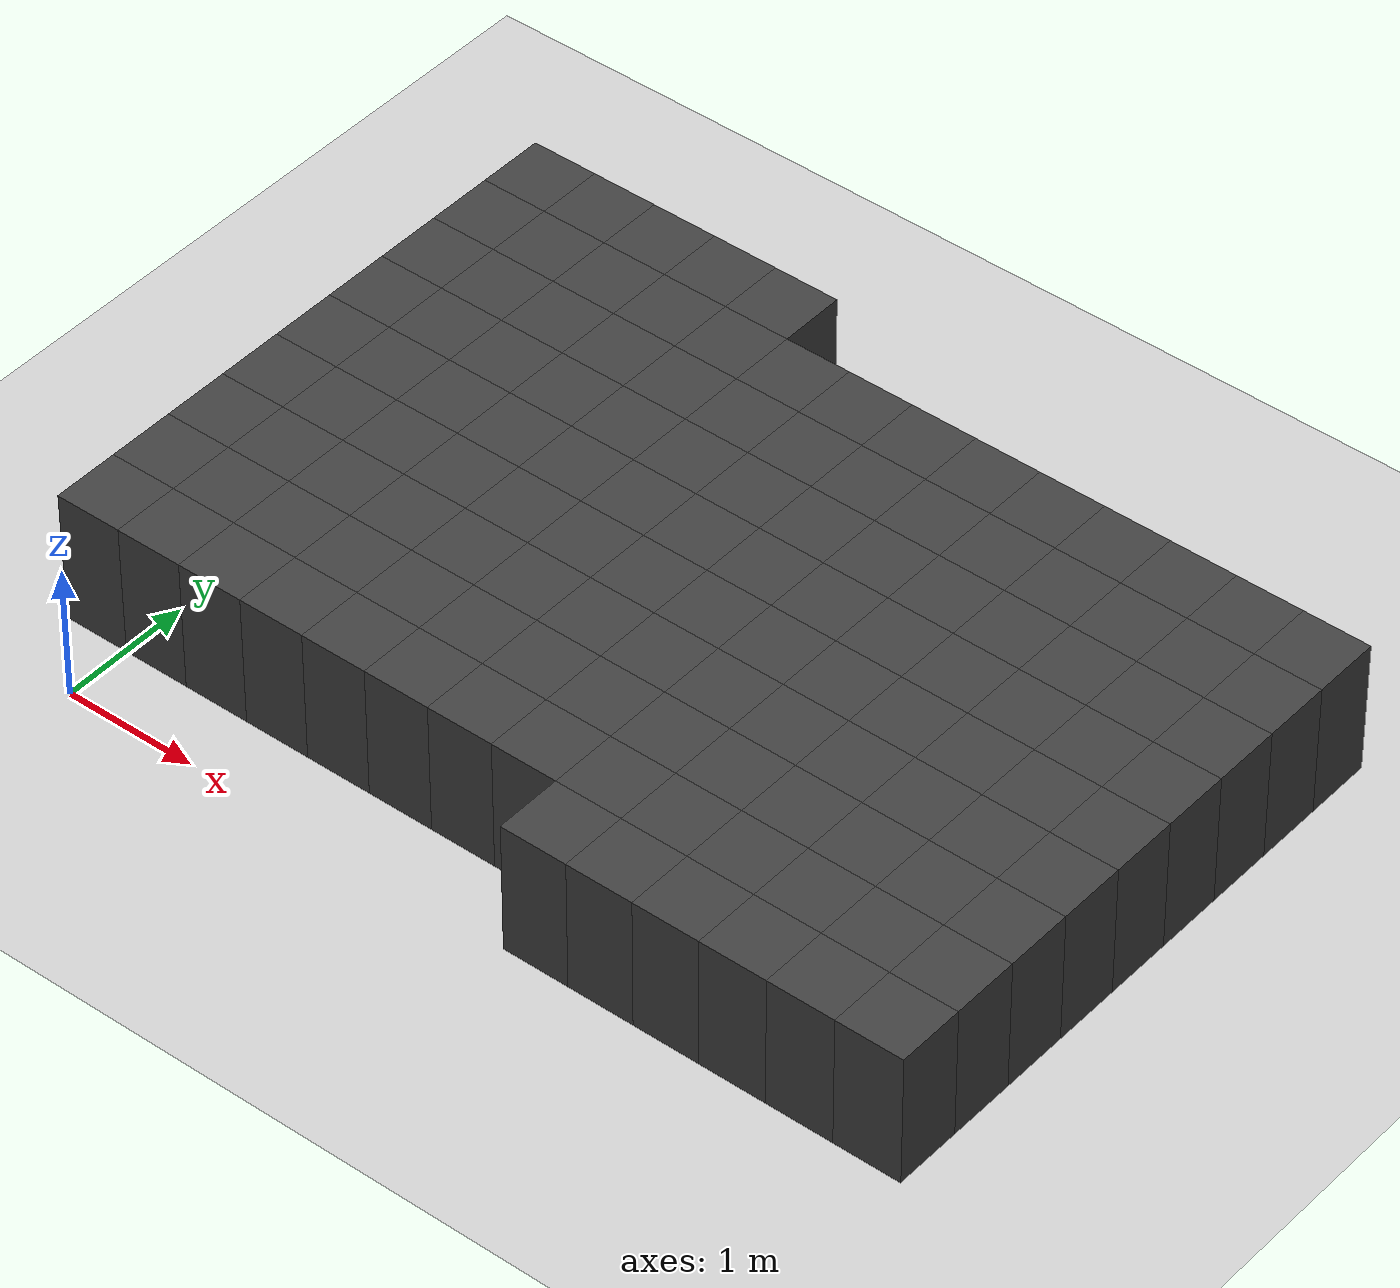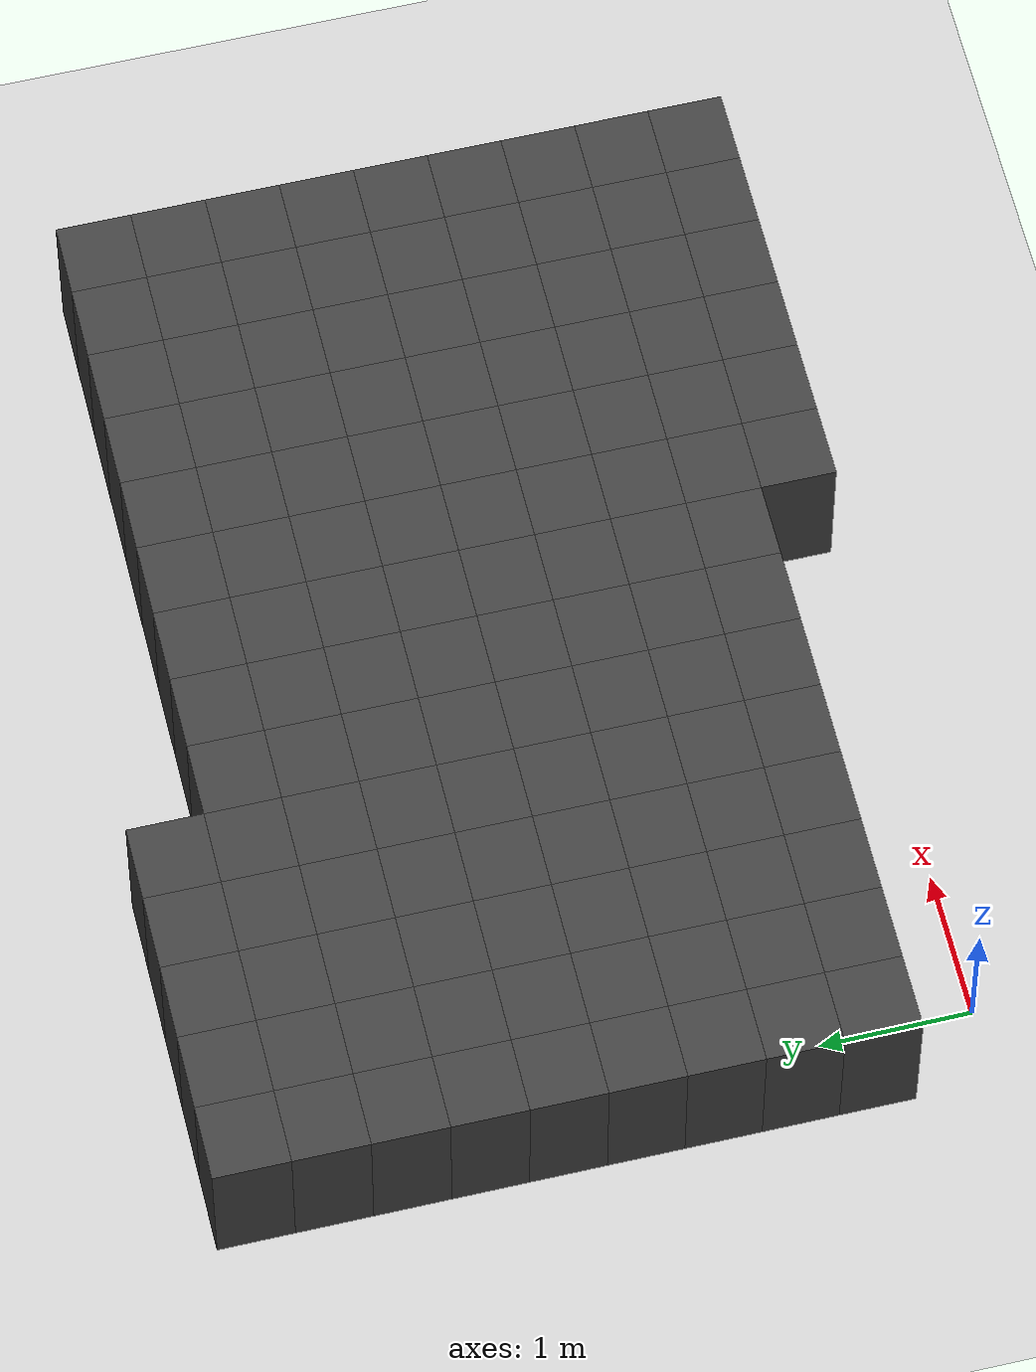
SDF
<sdf version="1.7">
 <world name="map_14547">
  <model name="ground_plane">
   <static>true</static>
   <link name="link">
    <collision name="collision">
     <geometry><plane><normal>0 0 1</normal><size>200 200</size></plane></geometry>
    </collision>
    <visual name="visual">
     <geometry><plane><normal>0 0 1</normal><size>200 200</size></plane></geometry>
     <material><ambient>0.8 0.8 0.8 1</ambient><diffuse>0.8 0.8 0.8 1</diffuse></material>
    </visual>
   </link>
  </model>
  <model name="maze_environment">
   <static>true</static>
   <link name="wall_462">
    <pose>-0.250 4.750 0.500 0 0 0</pose>
    <collision name="col"><geometry><box><size>0.5 0.5 1.0</size></box></geometry></collision>
    <visual name="vis">
     <geometry><box><size>0.5 0.5 1.0</size></box></geometry>
     <material><ambient>0.15 0.15 0.15 1</ambient><diffuse>0.25 0.25 0.25 1</diffuse></material>
    </visual>
   </link>
   <link name="wall_463">
    <pose>0.250 4.750 0.500 0 0 0</pose>
    <collision name="col"><geometry><box><size>0.5 0.5 1.0</size></box></geometry></collision>
    <visual name="vis">
     <geometry><box><size>0.5 0.5 1.0</size></box></geometry>
     <material><ambient>0.15 0.15 0.15 1</ambient><diffuse>0.25 0.25 0.25 1</diffuse></material>
    </visual>
   </link>
   <link name="wall_464">
    <pose>0.750 4.750 0.500 0 0 0</pose>
    <collision name="col"><geometry><box><size>0.5 0.5 1.0</size></box></geometry></collision>
    <visual name="vis">
     <geometry><box><size>0.5 0.5 1.0</size></box></geometry>
     <material><ambient>0.15 0.15 0.15 1</ambient><diffuse>0.25 0.25 0.25 1</diffuse></material>
    </visual>
   </link>
   <link name="wall_465">
    <pose>1.250 4.750 0.500 0 0 0</pose>
    <collision name="col"><geometry><box><size>0.5 0.5 1.0</size></box></geometry></collision>
    <visual name="vis">
     <geometry><box><size>0.5 0.5 1.0</size></box></geometry>
     <material><ambient>0.15 0.15 0.15 1</ambient><diffuse>0.25 0.25 0.25 1</diffuse></material>
    </visual>
   </link>
   <link name="wall_466">
    <pose>1.750 4.750 0.500 0 0 0</pose>
    <collision name="col"><geometry><box><size>0.5 0.5 1.0</size></box></geometry></collision>
    <visual name="vis">
     <geometry><box><size>0.5 0.5 1.0</size></box></geometry>
     <material><ambient>0.15 0.15 0.15 1</ambient><diffuse>0.25 0.25 0.25 1</diffuse></material>
    </visual>
   </link>
   <link name="wall_504">
    <pose>-0.250 4.250 0.500 0 0 0</pose>
    <collision name="col"><geometry><box><size>0.5 0.5 1.0</size></box></geometry></collision>
    <visual name="vis">
     <geometry><box><size>0.5 0.5 1.0</size></box></geometry>
     <material><ambient>0.15 0.15 0.15 1</ambient><diffuse>0.25 0.25 0.25 1</diffuse></material>
    </visual>
   </link>
   <link name="wall_505">
    <pose>0.250 4.250 0.500 0 0 0</pose>
    <collision name="col"><geometry><box><size>0.5 0.5 1.0</size></box></geometry></collision>
    <visual name="vis">
     <geometry><box><size>0.5 0.5 1.0</size></box></geometry>
     <material><ambient>0.15 0.15 0.15 1</ambient><diffuse>0.25 0.25 0.25 1</diffuse></material>
    </visual>
   </link>
   <link name="wall_506">
    <pose>0.750 4.250 0.500 0 0 0</pose>
    <collision name="col"><geometry><box><size>0.5 0.5 1.0</size></box></geometry></collision>
    <visual name="vis">
     <geometry><box><size>0.5 0.5 1.0</size></box></geometry>
     <material><ambient>0.15 0.15 0.15 1</ambient><diffuse>0.25 0.25 0.25 1</diffuse></material>
    </visual>
   </link>
   <link name="wall_507">
    <pose>1.250 4.250 0.500 0 0 0</pose>
    <collision name="col"><geometry><box><size>0.5 0.5 1.0</size></box></geometry></collision>
    <visual name="vis">
     <geometry><box><size>0.5 0.5 1.0</size></box></geometry>
     <material><ambient>0.15 0.15 0.15 1</ambient><diffuse>0.25 0.25 0.25 1</diffuse></material>
    </visual>
   </link>
   <link name="wall_508">
    <pose>1.750 4.250 0.500 0 0 0</pose>
    <collision name="col"><geometry><box><size>0.5 0.5 1.0</size></box></geometry></collision>
    <visual name="vis">
     <geometry><box><size>0.5 0.5 1.0</size></box></geometry>
     <material><ambient>0.15 0.15 0.15 1</ambient><diffuse>0.25 0.25 0.25 1</diffuse></material>
    </visual>
   </link>
   <link name="wall_509">
    <pose>2.250 4.250 0.500 0 0 0</pose>
    <collision name="col"><geometry><box><size>0.5 0.5 1.0</size></box></geometry></collision>
    <visual name="vis">
     <geometry><box><size>0.5 0.5 1.0</size></box></geometry>
     <material><ambient>0.15 0.15 0.15 1</ambient><diffuse>0.25 0.25 0.25 1</diffuse></material>
    </visual>
   </link>
   <link name="wall_510">
    <pose>2.750 4.250 0.500 0 0 0</pose>
    <collision name="col"><geometry><box><size>0.5 0.5 1.0</size></box></geometry></collision>
    <visual name="vis">
     <geometry><box><size>0.5 0.5 1.0</size></box></geometry>
     <material><ambient>0.15 0.15 0.15 1</ambient><diffuse>0.25 0.25 0.25 1</diffuse></material>
    </visual>
   </link>
   <link name="wall_511">
    <pose>3.250 4.250 0.500 0 0 0</pose>
    <collision name="col"><geometry><box><size>0.5 0.5 1.0</size></box></geometry></collision>
    <visual name="vis">
     <geometry><box><size>0.5 0.5 1.0</size></box></geometry>
     <material><ambient>0.15 0.15 0.15 1</ambient><diffuse>0.25 0.25 0.25 1</diffuse></material>
    </visual>
   </link>
   <link name="wall_512">
    <pose>3.750 4.250 0.500 0 0 0</pose>
    <collision name="col"><geometry><box><size>0.5 0.5 1.0</size></box></geometry></collision>
    <visual name="vis">
     <geometry><box><size>0.5 0.5 1.0</size></box></geometry>
     <material><ambient>0.15 0.15 0.15 1</ambient><diffuse>0.25 0.25 0.25 1</diffuse></material>
    </visual>
   </link>
   <link name="wall_513">
    <pose>4.250 4.250 0.500 0 0 0</pose>
    <collision name="col"><geometry><box><size>0.5 0.5 1.0</size></box></geometry></collision>
    <visual name="vis">
     <geometry><box><size>0.5 0.5 1.0</size></box></geometry>
     <material><ambient>0.15 0.15 0.15 1</ambient><diffuse>0.25 0.25 0.25 1</diffuse></material>
    </visual>
   </link>
   <link name="wall_514">
    <pose>4.750 4.250 0.500 0 0 0</pose>
    <collision name="col"><geometry><box><size>0.5 0.5 1.0</size></box></geometry></collision>
    <visual name="vis">
     <geometry><box><size>0.5 0.5 1.0</size></box></geometry>
     <material><ambient>0.15 0.15 0.15 1</ambient><diffuse>0.25 0.25 0.25 1</diffuse></material>
    </visual>
   </link>
   <link name="wall_515">
    <pose>5.250 4.250 0.500 0 0 0</pose>
    <collision name="col"><geometry><box><size>0.5 0.5 1.0</size></box></geometry></collision>
    <visual name="vis">
     <geometry><box><size>0.5 0.5 1.0</size></box></geometry>
     <material><ambient>0.15 0.15 0.15 1</ambient><diffuse>0.25 0.25 0.25 1</diffuse></material>
    </visual>
   </link>
   <link name="wall_516">
    <pose>5.750 4.250 0.500 0 0 0</pose>
    <collision name="col"><geometry><box><size>0.5 0.5 1.0</size></box></geometry></collision>
    <visual name="vis">
     <geometry><box><size>0.5 0.5 1.0</size></box></geometry>
     <material><ambient>0.15 0.15 0.15 1</ambient><diffuse>0.25 0.25 0.25 1</diffuse></material>
    </visual>
   </link>
   <link name="wall_517">
    <pose>6.250 4.250 0.500 0 0 0</pose>
    <collision name="col"><geometry><box><size>0.5 0.5 1.0</size></box></geometry></collision>
    <visual name="vis">
     <geometry><box><size>0.5 0.5 1.0</size></box></geometry>
     <material><ambient>0.15 0.15 0.15 1</ambient><diffuse>0.25 0.25 0.25 1</diffuse></material>
    </visual>
   </link>
   <link name="wall_546">
    <pose>-0.250 3.750 0.500 0 0 0</pose>
    <collision name="col"><geometry><box><size>0.5 0.5 1.0</size></box></geometry></collision>
    <visual name="vis">
     <geometry><box><size>0.5 0.5 1.0</size></box></geometry>
     <material><ambient>0.15 0.15 0.15 1</ambient><diffuse>0.25 0.25 0.25 1</diffuse></material>
    </visual>
   </link>
   <link name="wall_547">
    <pose>0.250 3.750 0.500 0 0 0</pose>
    <collision name="col"><geometry><box><size>0.5 0.5 1.0</size></box></geometry></collision>
    <visual name="vis">
     <geometry><box><size>0.5 0.5 1.0</size></box></geometry>
     <material><ambient>0.15 0.15 0.15 1</ambient><diffuse>0.25 0.25 0.25 1</diffuse></material>
    </visual>
   </link>
   <link name="wall_548">
    <pose>0.750 3.750 0.500 0 0 0</pose>
    <collision name="col"><geometry><box><size>0.5 0.5 1.0</size></box></geometry></collision>
    <visual name="vis">
     <geometry><box><size>0.5 0.5 1.0</size></box></geometry>
     <material><ambient>0.15 0.15 0.15 1</ambient><diffuse>0.25 0.25 0.25 1</diffuse></material>
    </visual>
   </link>
   <link name="wall_549">
    <pose>1.250 3.750 0.500 0 0 0</pose>
    <collision name="col"><geometry><box><size>0.5 0.5 1.0</size></box></geometry></collision>
    <visual name="vis">
     <geometry><box><size>0.5 0.5 1.0</size></box></geometry>
     <material><ambient>0.15 0.15 0.15 1</ambient><diffuse>0.25 0.25 0.25 1</diffuse></material>
    </visual>
   </link>
   <link name="wall_550">
    <pose>1.750 3.750 0.500 0 0 0</pose>
    <collision name="col"><geometry><box><size>0.5 0.5 1.0</size></box></geometry></collision>
    <visual name="vis">
     <geometry><box><size>0.5 0.5 1.0</size></box></geometry>
     <material><ambient>0.15 0.15 0.15 1</ambient><diffuse>0.25 0.25 0.25 1</diffuse></material>
    </visual>
   </link>
   <link name="wall_551">
    <pose>2.250 3.750 0.500 0 0 0</pose>
    <collision name="col"><geometry><box><size>0.5 0.5 1.0</size></box></geometry></collision>
    <visual name="vis">
     <geometry><box><size>0.5 0.5 1.0</size></box></geometry>
     <material><ambient>0.15 0.15 0.15 1</ambient><diffuse>0.25 0.25 0.25 1</diffuse></material>
    </visual>
   </link>
   <link name="wall_552">
    <pose>2.750 3.750 0.500 0 0 0</pose>
    <collision name="col"><geometry><box><size>0.5 0.5 1.0</size></box></geometry></collision>
    <visual name="vis">
     <geometry><box><size>0.5 0.5 1.0</size></box></geometry>
     <material><ambient>0.15 0.15 0.15 1</ambient><diffuse>0.25 0.25 0.25 1</diffuse></material>
    </visual>
   </link>
   <link name="wall_553">
    <pose>3.250 3.750 0.500 0 0 0</pose>
    <collision name="col"><geometry><box><size>0.5 0.5 1.0</size></box></geometry></collision>
    <visual name="vis">
     <geometry><box><size>0.5 0.5 1.0</size></box></geometry>
     <material><ambient>0.15 0.15 0.15 1</ambient><diffuse>0.25 0.25 0.25 1</diffuse></material>
    </visual>
   </link>
   <link name="wall_554">
    <pose>3.750 3.750 0.500 0 0 0</pose>
    <collision name="col"><geometry><box><size>0.5 0.5 1.0</size></box></geometry></collision>
    <visual name="vis">
     <geometry><box><size>0.5 0.5 1.0</size></box></geometry>
     <material><ambient>0.15 0.15 0.15 1</ambient><diffuse>0.25 0.25 0.25 1</diffuse></material>
    </visual>
   </link>
   <link name="wall_555">
    <pose>4.250 3.750 0.500 0 0 0</pose>
    <collision name="col"><geometry><box><size>0.5 0.5 1.0</size></box></geometry></collision>
    <visual name="vis">
     <geometry><box><size>0.5 0.5 1.0</size></box></geometry>
     <material><ambient>0.15 0.15 0.15 1</ambient><diffuse>0.25 0.25 0.25 1</diffuse></material>
    </visual>
   </link>
   <link name="wall_556">
    <pose>4.750 3.750 0.500 0 0 0</pose>
    <collision name="col"><geometry><box><size>0.5 0.5 1.0</size></box></geometry></collision>
    <visual name="vis">
     <geometry><box><size>0.5 0.5 1.0</size></box></geometry>
     <material><ambient>0.15 0.15 0.15 1</ambient><diffuse>0.25 0.25 0.25 1</diffuse></material>
    </visual>
   </link>
   <link name="wall_557">
    <pose>5.250 3.750 0.500 0 0 0</pose>
    <collision name="col"><geometry><box><size>0.5 0.5 1.0</size></box></geometry></collision>
    <visual name="vis">
     <geometry><box><size>0.5 0.5 1.0</size></box></geometry>
     <material><ambient>0.15 0.15 0.15 1</ambient><diffuse>0.25 0.25 0.25 1</diffuse></material>
    </visual>
   </link>
   <link name="wall_558">
    <pose>5.750 3.750 0.500 0 0 0</pose>
    <collision name="col"><geometry><box><size>0.5 0.5 1.0</size></box></geometry></collision>
    <visual name="vis">
     <geometry><box><size>0.5 0.5 1.0</size></box></geometry>
     <material><ambient>0.15 0.15 0.15 1</ambient><diffuse>0.25 0.25 0.25 1</diffuse></material>
    </visual>
   </link>
   <link name="wall_559">
    <pose>6.250 3.750 0.500 0 0 0</pose>
    <collision name="col"><geometry><box><size>0.5 0.5 1.0</size></box></geometry></collision>
    <visual name="vis">
     <geometry><box><size>0.5 0.5 1.0</size></box></geometry>
     <material><ambient>0.15 0.15 0.15 1</ambient><diffuse>0.25 0.25 0.25 1</diffuse></material>
    </visual>
   </link>
   <link name="wall_595">
    <pose>-0.250 3.250 0.500 0 0 0</pose>
    <collision name="col"><geometry><box><size>0.5 0.5 1.0</size></box></geometry></collision>
    <visual name="vis">
     <geometry><box><size>0.5 0.5 1.0</size></box></geometry>
     <material><ambient>0.15 0.15 0.15 1</ambient><diffuse>0.25 0.25 0.25 1</diffuse></material>
    </visual>
   </link>
   <link name="wall_596">
    <pose>0.250 3.250 0.500 0 0 0</pose>
    <collision name="col"><geometry><box><size>0.5 0.5 1.0</size></box></geometry></collision>
    <visual name="vis">
     <geometry><box><size>0.5 0.5 1.0</size></box></geometry>
     <material><ambient>0.15 0.15 0.15 1</ambient><diffuse>0.25 0.25 0.25 1</diffuse></material>
    </visual>
   </link>
   <link name="wall_597">
    <pose>0.750 3.250 0.500 0 0 0</pose>
    <collision name="col"><geometry><box><size>0.5 0.5 1.0</size></box></geometry></collision>
    <visual name="vis">
     <geometry><box><size>0.5 0.5 1.0</size></box></geometry>
     <material><ambient>0.15 0.15 0.15 1</ambient><diffuse>0.25 0.25 0.25 1</diffuse></material>
    </visual>
   </link>
   <link name="wall_598">
    <pose>1.250 3.250 0.500 0 0 0</pose>
    <collision name="col"><geometry><box><size>0.5 0.5 1.0</size></box></geometry></collision>
    <visual name="vis">
     <geometry><box><size>0.5 0.5 1.0</size></box></geometry>
     <material><ambient>0.15 0.15 0.15 1</ambient><diffuse>0.25 0.25 0.25 1</diffuse></material>
    </visual>
   </link>
   <link name="wall_599">
    <pose>1.750 3.250 0.500 0 0 0</pose>
    <collision name="col"><geometry><box><size>0.5 0.5 1.0</size></box></geometry></collision>
    <visual name="vis">
     <geometry><box><size>0.5 0.5 1.0</size></box></geometry>
     <material><ambient>0.15 0.15 0.15 1</ambient><diffuse>0.25 0.25 0.25 1</diffuse></material>
    </visual>
   </link>
   <link name="wall_600">
    <pose>2.250 3.250 0.500 0 0 0</pose>
    <collision name="col"><geometry><box><size>0.5 0.5 1.0</size></box></geometry></collision>
    <visual name="vis">
     <geometry><box><size>0.5 0.5 1.0</size></box></geometry>
     <material><ambient>0.15 0.15 0.15 1</ambient><diffuse>0.25 0.25 0.25 1</diffuse></material>
    </visual>
   </link>
   <link name="wall_601">
    <pose>2.750 3.250 0.500 0 0 0</pose>
    <collision name="col"><geometry><box><size>0.5 0.5 1.0</size></box></geometry></collision>
    <visual name="vis">
     <geometry><box><size>0.5 0.5 1.0</size></box></geometry>
     <material><ambient>0.15 0.15 0.15 1</ambient><diffuse>0.25 0.25 0.25 1</diffuse></material>
    </visual>
   </link>
   <link name="wall_602">
    <pose>3.250 3.250 0.500 0 0 0</pose>
    <collision name="col"><geometry><box><size>0.5 0.5 1.0</size></box></geometry></collision>
    <visual name="vis">
     <geometry><box><size>0.5 0.5 1.0</size></box></geometry>
     <material><ambient>0.15 0.15 0.15 1</ambient><diffuse>0.25 0.25 0.25 1</diffuse></material>
    </visual>
   </link>
   <link name="wall_603">
    <pose>3.750 3.250 0.500 0 0 0</pose>
    <collision name="col"><geometry><box><size>0.5 0.5 1.0</size></box></geometry></collision>
    <visual name="vis">
     <geometry><box><size>0.5 0.5 1.0</size></box></geometry>
     <material><ambient>0.15 0.15 0.15 1</ambient><diffuse>0.25 0.25 0.25 1</diffuse></material>
    </visual>
   </link>
   <link name="wall_604">
    <pose>4.250 3.250 0.500 0 0 0</pose>
    <collision name="col"><geometry><box><size>0.5 0.5 1.0</size></box></geometry></collision>
    <visual name="vis">
     <geometry><box><size>0.5 0.5 1.0</size></box></geometry>
     <material><ambient>0.15 0.15 0.15 1</ambient><diffuse>0.25 0.25 0.25 1</diffuse></material>
    </visual>
   </link>
   <link name="wall_605">
    <pose>4.750 3.250 0.500 0 0 0</pose>
    <collision name="col"><geometry><box><size>0.5 0.5 1.0</size></box></geometry></collision>
    <visual name="vis">
     <geometry><box><size>0.5 0.5 1.0</size></box></geometry>
     <material><ambient>0.15 0.15 0.15 1</ambient><diffuse>0.25 0.25 0.25 1</diffuse></material>
    </visual>
   </link>
   <link name="wall_606">
    <pose>5.250 3.250 0.500 0 0 0</pose>
    <collision name="col"><geometry><box><size>0.5 0.5 1.0</size></box></geometry></collision>
    <visual name="vis">
     <geometry><box><size>0.5 0.5 1.0</size></box></geometry>
     <material><ambient>0.15 0.15 0.15 1</ambient><diffuse>0.25 0.25 0.25 1</diffuse></material>
    </visual>
   </link>
   <link name="wall_607">
    <pose>5.750 3.250 0.500 0 0 0</pose>
    <collision name="col"><geometry><box><size>0.5 0.5 1.0</size></box></geometry></collision>
    <visual name="vis">
     <geometry><box><size>0.5 0.5 1.0</size></box></geometry>
     <material><ambient>0.15 0.15 0.15 1</ambient><diffuse>0.25 0.25 0.25 1</diffuse></material>
    </visual>
   </link>
   <link name="wall_608">
    <pose>6.250 3.250 0.500 0 0 0</pose>
    <collision name="col"><geometry><box><size>0.5 0.5 1.0</size></box></geometry></collision>
    <visual name="vis">
     <geometry><box><size>0.5 0.5 1.0</size></box></geometry>
     <material><ambient>0.15 0.15 0.15 1</ambient><diffuse>0.25 0.25 0.25 1</diffuse></material>
    </visual>
   </link>
   <link name="wall_639">
    <pose>-0.250 2.750 0.500 0 0 0</pose>
    <collision name="col"><geometry><box><size>0.5 0.5 1.0</size></box></geometry></collision>
    <visual name="vis">
     <geometry><box><size>0.5 0.5 1.0</size></box></geometry>
     <material><ambient>0.15 0.15 0.15 1</ambient><diffuse>0.25 0.25 0.25 1</diffuse></material>
    </visual>
   </link>
   <link name="wall_640">
    <pose>0.250 2.750 0.500 0 0 0</pose>
    <collision name="col"><geometry><box><size>0.5 0.5 1.0</size></box></geometry></collision>
    <visual name="vis">
     <geometry><box><size>0.5 0.5 1.0</size></box></geometry>
     <material><ambient>0.15 0.15 0.15 1</ambient><diffuse>0.25 0.25 0.25 1</diffuse></material>
    </visual>
   </link>
   <link name="wall_641">
    <pose>0.750 2.750 0.500 0 0 0</pose>
    <collision name="col"><geometry><box><size>0.5 0.5 1.0</size></box></geometry></collision>
    <visual name="vis">
     <geometry><box><size>0.5 0.5 1.0</size></box></geometry>
     <material><ambient>0.15 0.15 0.15 1</ambient><diffuse>0.25 0.25 0.25 1</diffuse></material>
    </visual>
   </link>
   <link name="wall_642">
    <pose>1.250 2.750 0.500 0 0 0</pose>
    <collision name="col"><geometry><box><size>0.5 0.5 1.0</size></box></geometry></collision>
    <visual name="vis">
     <geometry><box><size>0.5 0.5 1.0</size></box></geometry>
     <material><ambient>0.15 0.15 0.15 1</ambient><diffuse>0.25 0.25 0.25 1</diffuse></material>
    </visual>
   </link>
   <link name="wall_643">
    <pose>1.750 2.750 0.500 0 0 0</pose>
    <collision name="col"><geometry><box><size>0.5 0.5 1.0</size></box></geometry></collision>
    <visual name="vis">
     <geometry><box><size>0.5 0.5 1.0</size></box></geometry>
     <material><ambient>0.15 0.15 0.15 1</ambient><diffuse>0.25 0.25 0.25 1</diffuse></material>
    </visual>
   </link>
   <link name="wall_644">
    <pose>2.250 2.750 0.500 0 0 0</pose>
    <collision name="col"><geometry><box><size>0.5 0.5 1.0</size></box></geometry></collision>
    <visual name="vis">
     <geometry><box><size>0.5 0.5 1.0</size></box></geometry>
     <material><ambient>0.15 0.15 0.15 1</ambient><diffuse>0.25 0.25 0.25 1</diffuse></material>
    </visual>
   </link>
   <link name="wall_645">
    <pose>2.750 2.750 0.500 0 0 0</pose>
    <collision name="col"><geometry><box><size>0.5 0.5 1.0</size></box></geometry></collision>
    <visual name="vis">
     <geometry><box><size>0.5 0.5 1.0</size></box></geometry>
     <material><ambient>0.15 0.15 0.15 1</ambient><diffuse>0.25 0.25 0.25 1</diffuse></material>
    </visual>
   </link>
   <link name="wall_646">
    <pose>3.250 2.750 0.500 0 0 0</pose>
    <collision name="col"><geometry><box><size>0.5 0.5 1.0</size></box></geometry></collision>
    <visual name="vis">
     <geometry><box><size>0.5 0.5 1.0</size></box></geometry>
     <material><ambient>0.15 0.15 0.15 1</ambient><diffuse>0.25 0.25 0.25 1</diffuse></material>
    </visual>
   </link>
   <link name="wall_647">
    <pose>3.750 2.750 0.500 0 0 0</pose>
    <collision name="col"><geometry><box><size>0.5 0.5 1.0</size></box></geometry></collision>
    <visual name="vis">
     <geometry><box><size>0.5 0.5 1.0</size></box></geometry>
     <material><ambient>0.15 0.15 0.15 1</ambient><diffuse>0.25 0.25 0.25 1</diffuse></material>
    </visual>
   </link>
   <link name="wall_648">
    <pose>4.250 2.750 0.500 0 0 0</pose>
    <collision name="col"><geometry><box><size>0.5 0.5 1.0</size></box></geometry></collision>
    <visual name="vis">
     <geometry><box><size>0.5 0.5 1.0</size></box></geometry>
     <material><ambient>0.15 0.15 0.15 1</ambient><diffuse>0.25 0.25 0.25 1</diffuse></material>
    </visual>
   </link>
   <link name="wall_649">
    <pose>4.750 2.750 0.500 0 0 0</pose>
    <collision name="col"><geometry><box><size>0.5 0.5 1.0</size></box></geometry></collision>
    <visual name="vis">
     <geometry><box><size>0.5 0.5 1.0</size></box></geometry>
     <material><ambient>0.15 0.15 0.15 1</ambient><diffuse>0.25 0.25 0.25 1</diffuse></material>
    </visual>
   </link>
   <link name="wall_650">
    <pose>5.250 2.750 0.500 0 0 0</pose>
    <collision name="col"><geometry><box><size>0.5 0.5 1.0</size></box></geometry></collision>
    <visual name="vis">
     <geometry><box><size>0.5 0.5 1.0</size></box></geometry>
     <material><ambient>0.15 0.15 0.15 1</ambient><diffuse>0.25 0.25 0.25 1</diffuse></material>
    </visual>
   </link>
   <link name="wall_651">
    <pose>5.750 2.750 0.500 0 0 0</pose>
    <collision name="col"><geometry><box><size>0.5 0.5 1.0</size></box></geometry></collision>
    <visual name="vis">
     <geometry><box><size>0.5 0.5 1.0</size></box></geometry>
     <material><ambient>0.15 0.15 0.15 1</ambient><diffuse>0.25 0.25 0.25 1</diffuse></material>
    </visual>
   </link>
   <link name="wall_652">
    <pose>6.250 2.750 0.500 0 0 0</pose>
    <collision name="col"><geometry><box><size>0.5 0.5 1.0</size></box></geometry></collision>
    <visual name="vis">
     <geometry><box><size>0.5 0.5 1.0</size></box></geometry>
     <material><ambient>0.15 0.15 0.15 1</ambient><diffuse>0.25 0.25 0.25 1</diffuse></material>
    </visual>
   </link>
   <link name="wall_683">
    <pose>-0.250 2.250 0.500 0 0 0</pose>
    <collision name="col"><geometry><box><size>0.5 0.5 1.0</size></box></geometry></collision>
    <visual name="vis">
     <geometry><box><size>0.5 0.5 1.0</size></box></geometry>
     <material><ambient>0.15 0.15 0.15 1</ambient><diffuse>0.25 0.25 0.25 1</diffuse></material>
    </visual>
   </link>
   <link name="wall_684">
    <pose>0.250 2.250 0.500 0 0 0</pose>
    <collision name="col"><geometry><box><size>0.5 0.5 1.0</size></box></geometry></collision>
    <visual name="vis">
     <geometry><box><size>0.5 0.5 1.0</size></box></geometry>
     <material><ambient>0.15 0.15 0.15 1</ambient><diffuse>0.25 0.25 0.25 1</diffuse></material>
    </visual>
   </link>
   <link name="wall_685">
    <pose>0.750 2.250 0.500 0 0 0</pose>
    <collision name="col"><geometry><box><size>0.5 0.5 1.0</size></box></geometry></collision>
    <visual name="vis">
     <geometry><box><size>0.5 0.5 1.0</size></box></geometry>
     <material><ambient>0.15 0.15 0.15 1</ambient><diffuse>0.25 0.25 0.25 1</diffuse></material>
    </visual>
   </link>
   <link name="wall_686">
    <pose>1.250 2.250 0.500 0 0 0</pose>
    <collision name="col"><geometry><box><size>0.5 0.5 1.0</size></box></geometry></collision>
    <visual name="vis">
     <geometry><box><size>0.5 0.5 1.0</size></box></geometry>
     <material><ambient>0.15 0.15 0.15 1</ambient><diffuse>0.25 0.25 0.25 1</diffuse></material>
    </visual>
   </link>
   <link name="wall_687">
    <pose>1.750 2.250 0.500 0 0 0</pose>
    <collision name="col"><geometry><box><size>0.5 0.5 1.0</size></box></geometry></collision>
    <visual name="vis">
     <geometry><box><size>0.5 0.5 1.0</size></box></geometry>
     <material><ambient>0.15 0.15 0.15 1</ambient><diffuse>0.25 0.25 0.25 1</diffuse></material>
    </visual>
   </link>
   <link name="wall_688">
    <pose>2.250 2.250 0.500 0 0 0</pose>
    <collision name="col"><geometry><box><size>0.5 0.5 1.0</size></box></geometry></collision>
    <visual name="vis">
     <geometry><box><size>0.5 0.5 1.0</size></box></geometry>
     <material><ambient>0.15 0.15 0.15 1</ambient><diffuse>0.25 0.25 0.25 1</diffuse></material>
    </visual>
   </link>
   <link name="wall_689">
    <pose>2.750 2.250 0.500 0 0 0</pose>
    <collision name="col"><geometry><box><size>0.5 0.5 1.0</size></box></geometry></collision>
    <visual name="vis">
     <geometry><box><size>0.5 0.5 1.0</size></box></geometry>
     <material><ambient>0.15 0.15 0.15 1</ambient><diffuse>0.25 0.25 0.25 1</diffuse></material>
    </visual>
   </link>
   <link name="wall_690">
    <pose>3.250 2.250 0.500 0 0 0</pose>
    <collision name="col"><geometry><box><size>0.5 0.5 1.0</size></box></geometry></collision>
    <visual name="vis">
     <geometry><box><size>0.5 0.5 1.0</size></box></geometry>
     <material><ambient>0.15 0.15 0.15 1</ambient><diffuse>0.25 0.25 0.25 1</diffuse></material>
    </visual>
   </link>
   <link name="wall_691">
    <pose>3.750 2.250 0.500 0 0 0</pose>
    <collision name="col"><geometry><box><size>0.5 0.5 1.0</size></box></geometry></collision>
    <visual name="vis">
     <geometry><box><size>0.5 0.5 1.0</size></box></geometry>
     <material><ambient>0.15 0.15 0.15 1</ambient><diffuse>0.25 0.25 0.25 1</diffuse></material>
    </visual>
   </link>
   <link name="wall_692">
    <pose>4.250 2.250 0.500 0 0 0</pose>
    <collision name="col"><geometry><box><size>0.5 0.5 1.0</size></box></geometry></collision>
    <visual name="vis">
     <geometry><box><size>0.5 0.5 1.0</size></box></geometry>
     <material><ambient>0.15 0.15 0.15 1</ambient><diffuse>0.25 0.25 0.25 1</diffuse></material>
    </visual>
   </link>
   <link name="wall_693">
    <pose>4.750 2.250 0.500 0 0 0</pose>
    <collision name="col"><geometry><box><size>0.5 0.5 1.0</size></box></geometry></collision>
    <visual name="vis">
     <geometry><box><size>0.5 0.5 1.0</size></box></geometry>
     <material><ambient>0.15 0.15 0.15 1</ambient><diffuse>0.25 0.25 0.25 1</diffuse></material>
    </visual>
   </link>
   <link name="wall_694">
    <pose>5.250 2.250 0.500 0 0 0</pose>
    <collision name="col"><geometry><box><size>0.5 0.5 1.0</size></box></geometry></collision>
    <visual name="vis">
     <geometry><box><size>0.5 0.5 1.0</size></box></geometry>
     <material><ambient>0.15 0.15 0.15 1</ambient><diffuse>0.25 0.25 0.25 1</diffuse></material>
    </visual>
   </link>
   <link name="wall_695">
    <pose>5.750 2.250 0.500 0 0 0</pose>
    <collision name="col"><geometry><box><size>0.5 0.5 1.0</size></box></geometry></collision>
    <visual name="vis">
     <geometry><box><size>0.5 0.5 1.0</size></box></geometry>
     <material><ambient>0.15 0.15 0.15 1</ambient><diffuse>0.25 0.25 0.25 1</diffuse></material>
    </visual>
   </link>
   <link name="wall_696">
    <pose>6.250 2.250 0.500 0 0 0</pose>
    <collision name="col"><geometry><box><size>0.5 0.5 1.0</size></box></geometry></collision>
    <visual name="vis">
     <geometry><box><size>0.5 0.5 1.0</size></box></geometry>
     <material><ambient>0.15 0.15 0.15 1</ambient><diffuse>0.25 0.25 0.25 1</diffuse></material>
    </visual>
   </link>
   <link name="wall_727">
    <pose>-0.250 1.750 0.500 0 0 0</pose>
    <collision name="col"><geometry><box><size>0.5 0.5 1.0</size></box></geometry></collision>
    <visual name="vis">
     <geometry><box><size>0.5 0.5 1.0</size></box></geometry>
     <material><ambient>0.15 0.15 0.15 1</ambient><diffuse>0.25 0.25 0.25 1</diffuse></material>
    </visual>
   </link>
   <link name="wall_728">
    <pose>0.250 1.750 0.500 0 0 0</pose>
    <collision name="col"><geometry><box><size>0.5 0.5 1.0</size></box></geometry></collision>
    <visual name="vis">
     <geometry><box><size>0.5 0.5 1.0</size></box></geometry>
     <material><ambient>0.15 0.15 0.15 1</ambient><diffuse>0.25 0.25 0.25 1</diffuse></material>
    </visual>
   </link>
   <link name="wall_729">
    <pose>0.750 1.750 0.500 0 0 0</pose>
    <collision name="col"><geometry><box><size>0.5 0.5 1.0</size></box></geometry></collision>
    <visual name="vis">
     <geometry><box><size>0.5 0.5 1.0</size></box></geometry>
     <material><ambient>0.15 0.15 0.15 1</ambient><diffuse>0.25 0.25 0.25 1</diffuse></material>
    </visual>
   </link>
   <link name="wall_730">
    <pose>1.250 1.750 0.500 0 0 0</pose>
    <collision name="col"><geometry><box><size>0.5 0.5 1.0</size></box></geometry></collision>
    <visual name="vis">
     <geometry><box><size>0.5 0.5 1.0</size></box></geometry>
     <material><ambient>0.15 0.15 0.15 1</ambient><diffuse>0.25 0.25 0.25 1</diffuse></material>
    </visual>
   </link>
   <link name="wall_731">
    <pose>1.750 1.750 0.500 0 0 0</pose>
    <collision name="col"><geometry><box><size>0.5 0.5 1.0</size></box></geometry></collision>
    <visual name="vis">
     <geometry><box><size>0.5 0.5 1.0</size></box></geometry>
     <material><ambient>0.15 0.15 0.15 1</ambient><diffuse>0.25 0.25 0.25 1</diffuse></material>
    </visual>
   </link>
   <link name="wall_732">
    <pose>2.250 1.750 0.500 0 0 0</pose>
    <collision name="col"><geometry><box><size>0.5 0.5 1.0</size></box></geometry></collision>
    <visual name="vis">
     <geometry><box><size>0.5 0.5 1.0</size></box></geometry>
     <material><ambient>0.15 0.15 0.15 1</ambient><diffuse>0.25 0.25 0.25 1</diffuse></material>
    </visual>
   </link>
   <link name="wall_733">
    <pose>2.750 1.750 0.500 0 0 0</pose>
    <collision name="col"><geometry><box><size>0.5 0.5 1.0</size></box></geometry></collision>
    <visual name="vis">
     <geometry><box><size>0.5 0.5 1.0</size></box></geometry>
     <material><ambient>0.15 0.15 0.15 1</ambient><diffuse>0.25 0.25 0.25 1</diffuse></material>
    </visual>
   </link>
   <link name="wall_734">
    <pose>3.250 1.750 0.500 0 0 0</pose>
    <collision name="col"><geometry><box><size>0.5 0.5 1.0</size></box></geometry></collision>
    <visual name="vis">
     <geometry><box><size>0.5 0.5 1.0</size></box></geometry>
     <material><ambient>0.15 0.15 0.15 1</ambient><diffuse>0.25 0.25 0.25 1</diffuse></material>
    </visual>
   </link>
   <link name="wall_735">
    <pose>3.750 1.750 0.500 0 0 0</pose>
    <collision name="col"><geometry><box><size>0.5 0.5 1.0</size></box></geometry></collision>
    <visual name="vis">
     <geometry><box><size>0.5 0.5 1.0</size></box></geometry>
     <material><ambient>0.15 0.15 0.15 1</ambient><diffuse>0.25 0.25 0.25 1</diffuse></material>
    </visual>
   </link>
   <link name="wall_736">
    <pose>4.250 1.750 0.500 0 0 0</pose>
    <collision name="col"><geometry><box><size>0.5 0.5 1.0</size></box></geometry></collision>
    <visual name="vis">
     <geometry><box><size>0.5 0.5 1.0</size></box></geometry>
     <material><ambient>0.15 0.15 0.15 1</ambient><diffuse>0.25 0.25 0.25 1</diffuse></material>
    </visual>
   </link>
   <link name="wall_737">
    <pose>4.750 1.750 0.500 0 0 0</pose>
    <collision name="col"><geometry><box><size>0.5 0.5 1.0</size></box></geometry></collision>
    <visual name="vis">
     <geometry><box><size>0.5 0.5 1.0</size></box></geometry>
     <material><ambient>0.15 0.15 0.15 1</ambient><diffuse>0.25 0.25 0.25 1</diffuse></material>
    </visual>
   </link>
   <link name="wall_738">
    <pose>5.250 1.750 0.500 0 0 0</pose>
    <collision name="col"><geometry><box><size>0.5 0.5 1.0</size></box></geometry></collision>
    <visual name="vis">
     <geometry><box><size>0.5 0.5 1.0</size></box></geometry>
     <material><ambient>0.15 0.15 0.15 1</ambient><diffuse>0.25 0.25 0.25 1</diffuse></material>
    </visual>
   </link>
   <link name="wall_739">
    <pose>5.750 1.750 0.500 0 0 0</pose>
    <collision name="col"><geometry><box><size>0.5 0.5 1.0</size></box></geometry></collision>
    <visual name="vis">
     <geometry><box><size>0.5 0.5 1.0</size></box></geometry>
     <material><ambient>0.15 0.15 0.15 1</ambient><diffuse>0.25 0.25 0.25 1</diffuse></material>
    </visual>
   </link>
   <link name="wall_740">
    <pose>6.250 1.750 0.500 0 0 0</pose>
    <collision name="col"><geometry><box><size>0.5 0.5 1.0</size></box></geometry></collision>
    <visual name="vis">
     <geometry><box><size>0.5 0.5 1.0</size></box></geometry>
     <material><ambient>0.15 0.15 0.15 1</ambient><diffuse>0.25 0.25 0.25 1</diffuse></material>
    </visual>
   </link>
   <link name="wall_772">
    <pose>-0.250 1.250 0.500 0 0 0</pose>
    <collision name="col"><geometry><box><size>0.5 0.5 1.0</size></box></geometry></collision>
    <visual name="vis">
     <geometry><box><size>0.5 0.5 1.0</size></box></geometry>
     <material><ambient>0.15 0.15 0.15 1</ambient><diffuse>0.25 0.25 0.25 1</diffuse></material>
    </visual>
   </link>
   <link name="wall_773">
    <pose>0.250 1.250 0.500 0 0 0</pose>
    <collision name="col"><geometry><box><size>0.5 0.5 1.0</size></box></geometry></collision>
    <visual name="vis">
     <geometry><box><size>0.5 0.5 1.0</size></box></geometry>
     <material><ambient>0.15 0.15 0.15 1</ambient><diffuse>0.25 0.25 0.25 1</diffuse></material>
    </visual>
   </link>
   <link name="wall_774">
    <pose>0.750 1.250 0.500 0 0 0</pose>
    <collision name="col"><geometry><box><size>0.5 0.5 1.0</size></box></geometry></collision>
    <visual name="vis">
     <geometry><box><size>0.5 0.5 1.0</size></box></geometry>
     <material><ambient>0.15 0.15 0.15 1</ambient><diffuse>0.25 0.25 0.25 1</diffuse></material>
    </visual>
   </link>
   <link name="wall_775">
    <pose>1.250 1.250 0.500 0 0 0</pose>
    <collision name="col"><geometry><box><size>0.5 0.5 1.0</size></box></geometry></collision>
    <visual name="vis">
     <geometry><box><size>0.5 0.5 1.0</size></box></geometry>
     <material><ambient>0.15 0.15 0.15 1</ambient><diffuse>0.25 0.25 0.25 1</diffuse></material>
    </visual>
   </link>
   <link name="wall_776">
    <pose>1.750 1.250 0.500 0 0 0</pose>
    <collision name="col"><geometry><box><size>0.5 0.5 1.0</size></box></geometry></collision>
    <visual name="vis">
     <geometry><box><size>0.5 0.5 1.0</size></box></geometry>
     <material><ambient>0.15 0.15 0.15 1</ambient><diffuse>0.25 0.25 0.25 1</diffuse></material>
    </visual>
   </link>
   <link name="wall_777">
    <pose>2.250 1.250 0.500 0 0 0</pose>
    <collision name="col"><geometry><box><size>0.5 0.5 1.0</size></box></geometry></collision>
    <visual name="vis">
     <geometry><box><size>0.5 0.5 1.0</size></box></geometry>
     <material><ambient>0.15 0.15 0.15 1</ambient><diffuse>0.25 0.25 0.25 1</diffuse></material>
    </visual>
   </link>
   <link name="wall_778">
    <pose>2.750 1.250 0.500 0 0 0</pose>
    <collision name="col"><geometry><box><size>0.5 0.5 1.0</size></box></geometry></collision>
    <visual name="vis">
     <geometry><box><size>0.5 0.5 1.0</size></box></geometry>
     <material><ambient>0.15 0.15 0.15 1</ambient><diffuse>0.25 0.25 0.25 1</diffuse></material>
    </visual>
   </link>
   <link name="wall_779">
    <pose>3.250 1.250 0.500 0 0 0</pose>
    <collision name="col"><geometry><box><size>0.5 0.5 1.0</size></box></geometry></collision>
    <visual name="vis">
     <geometry><box><size>0.5 0.5 1.0</size></box></geometry>
     <material><ambient>0.15 0.15 0.15 1</ambient><diffuse>0.25 0.25 0.25 1</diffuse></material>
    </visual>
   </link>
   <link name="wall_780">
    <pose>3.750 1.250 0.500 0 0 0</pose>
    <collision name="col"><geometry><box><size>0.5 0.5 1.0</size></box></geometry></collision>
    <visual name="vis">
     <geometry><box><size>0.5 0.5 1.0</size></box></geometry>
     <material><ambient>0.15 0.15 0.15 1</ambient><diffuse>0.25 0.25 0.25 1</diffuse></material>
    </visual>
   </link>
   <link name="wall_781">
    <pose>4.250 1.250 0.500 0 0 0</pose>
    <collision name="col"><geometry><box><size>0.5 0.5 1.0</size></box></geometry></collision>
    <visual name="vis">
     <geometry><box><size>0.5 0.5 1.0</size></box></geometry>
     <material><ambient>0.15 0.15 0.15 1</ambient><diffuse>0.25 0.25 0.25 1</diffuse></material>
    </visual>
   </link>
   <link name="wall_782">
    <pose>4.750 1.250 0.500 0 0 0</pose>
    <collision name="col"><geometry><box><size>0.5 0.5 1.0</size></box></geometry></collision>
    <visual name="vis">
     <geometry><box><size>0.5 0.5 1.0</size></box></geometry>
     <material><ambient>0.15 0.15 0.15 1</ambient><diffuse>0.25 0.25 0.25 1</diffuse></material>
    </visual>
   </link>
   <link name="wall_783">
    <pose>5.250 1.250 0.500 0 0 0</pose>
    <collision name="col"><geometry><box><size>0.5 0.5 1.0</size></box></geometry></collision>
    <visual name="vis">
     <geometry><box><size>0.5 0.5 1.0</size></box></geometry>
     <material><ambient>0.15 0.15 0.15 1</ambient><diffuse>0.25 0.25 0.25 1</diffuse></material>
    </visual>
   </link>
   <link name="wall_784">
    <pose>5.750 1.250 0.500 0 0 0</pose>
    <collision name="col"><geometry><box><size>0.5 0.5 1.0</size></box></geometry></collision>
    <visual name="vis">
     <geometry><box><size>0.5 0.5 1.0</size></box></geometry>
     <material><ambient>0.15 0.15 0.15 1</ambient><diffuse>0.25 0.25 0.25 1</diffuse></material>
    </visual>
   </link>
   <link name="wall_785">
    <pose>6.250 1.250 0.500 0 0 0</pose>
    <collision name="col"><geometry><box><size>0.5 0.5 1.0</size></box></geometry></collision>
    <visual name="vis">
     <geometry><box><size>0.5 0.5 1.0</size></box></geometry>
     <material><ambient>0.15 0.15 0.15 1</ambient><diffuse>0.25 0.25 0.25 1</diffuse></material>
    </visual>
   </link>
   <link name="wall_817">
    <pose>-0.250 0.750 0.500 0 0 0</pose>
    <collision name="col"><geometry><box><size>0.5 0.5 1.0</size></box></geometry></collision>
    <visual name="vis">
     <geometry><box><size>0.5 0.5 1.0</size></box></geometry>
     <material><ambient>0.15 0.15 0.15 1</ambient><diffuse>0.25 0.25 0.25 1</diffuse></material>
    </visual>
   </link>
   <link name="wall_818">
    <pose>0.250 0.750 0.500 0 0 0</pose>
    <collision name="col"><geometry><box><size>0.5 0.5 1.0</size></box></geometry></collision>
    <visual name="vis">
     <geometry><box><size>0.5 0.5 1.0</size></box></geometry>
     <material><ambient>0.15 0.15 0.15 1</ambient><diffuse>0.25 0.25 0.25 1</diffuse></material>
    </visual>
   </link>
   <link name="wall_819">
    <pose>0.750 0.750 0.500 0 0 0</pose>
    <collision name="col"><geometry><box><size>0.5 0.5 1.0</size></box></geometry></collision>
    <visual name="vis">
     <geometry><box><size>0.5 0.5 1.0</size></box></geometry>
     <material><ambient>0.15 0.15 0.15 1</ambient><diffuse>0.25 0.25 0.25 1</diffuse></material>
    </visual>
   </link>
   <link name="wall_820">
    <pose>1.250 0.750 0.500 0 0 0</pose>
    <collision name="col"><geometry><box><size>0.5 0.5 1.0</size></box></geometry></collision>
    <visual name="vis">
     <geometry><box><size>0.5 0.5 1.0</size></box></geometry>
     <material><ambient>0.15 0.15 0.15 1</ambient><diffuse>0.25 0.25 0.25 1</diffuse></material>
    </visual>
   </link>
   <link name="wall_821">
    <pose>1.750 0.750 0.500 0 0 0</pose>
    <collision name="col"><geometry><box><size>0.5 0.5 1.0</size></box></geometry></collision>
    <visual name="vis">
     <geometry><box><size>0.5 0.5 1.0</size></box></geometry>
     <material><ambient>0.15 0.15 0.15 1</ambient><diffuse>0.25 0.25 0.25 1</diffuse></material>
    </visual>
   </link>
   <link name="wall_822">
    <pose>2.250 0.750 0.500 0 0 0</pose>
    <collision name="col"><geometry><box><size>0.5 0.5 1.0</size></box></geometry></collision>
    <visual name="vis">
     <geometry><box><size>0.5 0.5 1.0</size></box></geometry>
     <material><ambient>0.15 0.15 0.15 1</ambient><diffuse>0.25 0.25 0.25 1</diffuse></material>
    </visual>
   </link>
   <link name="wall_823">
    <pose>2.750 0.750 0.500 0 0 0</pose>
    <collision name="col"><geometry><box><size>0.5 0.5 1.0</size></box></geometry></collision>
    <visual name="vis">
     <geometry><box><size>0.5 0.5 1.0</size></box></geometry>
     <material><ambient>0.15 0.15 0.15 1</ambient><diffuse>0.25 0.25 0.25 1</diffuse></material>
    </visual>
   </link>
   <link name="wall_824">
    <pose>3.250 0.750 0.500 0 0 0</pose>
    <collision name="col"><geometry><box><size>0.5 0.5 1.0</size></box></geometry></collision>
    <visual name="vis">
     <geometry><box><size>0.5 0.5 1.0</size></box></geometry>
     <material><ambient>0.15 0.15 0.15 1</ambient><diffuse>0.25 0.25 0.25 1</diffuse></material>
    </visual>
   </link>
   <link name="wall_825">
    <pose>3.750 0.750 0.500 0 0 0</pose>
    <collision name="col"><geometry><box><size>0.5 0.5 1.0</size></box></geometry></collision>
    <visual name="vis">
     <geometry><box><size>0.5 0.5 1.0</size></box></geometry>
     <material><ambient>0.15 0.15 0.15 1</ambient><diffuse>0.25 0.25 0.25 1</diffuse></material>
    </visual>
   </link>
   <link name="wall_826">
    <pose>4.250 0.750 0.500 0 0 0</pose>
    <collision name="col"><geometry><box><size>0.5 0.5 1.0</size></box></geometry></collision>
    <visual name="vis">
     <geometry><box><size>0.5 0.5 1.0</size></box></geometry>
     <material><ambient>0.15 0.15 0.15 1</ambient><diffuse>0.25 0.25 0.25 1</diffuse></material>
    </visual>
   </link>
   <link name="wall_827">
    <pose>4.750 0.750 0.500 0 0 0</pose>
    <collision name="col"><geometry><box><size>0.5 0.5 1.0</size></box></geometry></collision>
    <visual name="vis">
     <geometry><box><size>0.5 0.5 1.0</size></box></geometry>
     <material><ambient>0.15 0.15 0.15 1</ambient><diffuse>0.25 0.25 0.25 1</diffuse></material>
    </visual>
   </link>
   <link name="wall_828">
    <pose>5.250 0.750 0.500 0 0 0</pose>
    <collision name="col"><geometry><box><size>0.5 0.5 1.0</size></box></geometry></collision>
    <visual name="vis">
     <geometry><box><size>0.5 0.5 1.0</size></box></geometry>
     <material><ambient>0.15 0.15 0.15 1</ambient><diffuse>0.25 0.25 0.25 1</diffuse></material>
    </visual>
   </link>
   <link name="wall_829">
    <pose>5.750 0.750 0.500 0 0 0</pose>
    <collision name="col"><geometry><box><size>0.5 0.5 1.0</size></box></geometry></collision>
    <visual name="vis">
     <geometry><box><size>0.5 0.5 1.0</size></box></geometry>
     <material><ambient>0.15 0.15 0.15 1</ambient><diffuse>0.25 0.25 0.25 1</diffuse></material>
    </visual>
   </link>
   <link name="wall_830">
    <pose>6.250 0.750 0.500 0 0 0</pose>
    <collision name="col"><geometry><box><size>0.5 0.5 1.0</size></box></geometry></collision>
    <visual name="vis">
     <geometry><box><size>0.5 0.5 1.0</size></box></geometry>
     <material><ambient>0.15 0.15 0.15 1</ambient><diffuse>0.25 0.25 0.25 1</diffuse></material>
    </visual>
   </link>
   <link name="wall_866">
    <pose>3.750 0.250 0.500 0 0 0</pose>
    <collision name="col"><geometry><box><size>0.5 0.5 1.0</size></box></geometry></collision>
    <visual name="vis">
     <geometry><box><size>0.5 0.5 1.0</size></box></geometry>
     <material><ambient>0.15 0.15 0.15 1</ambient><diffuse>0.25 0.25 0.25 1</diffuse></material>
    </visual>
   </link>
   <link name="wall_867">
    <pose>4.250 0.250 0.500 0 0 0</pose>
    <collision name="col"><geometry><box><size>0.5 0.5 1.0</size></box></geometry></collision>
    <visual name="vis">
     <geometry><box><size>0.5 0.5 1.0</size></box></geometry>
     <material><ambient>0.15 0.15 0.15 1</ambient><diffuse>0.25 0.25 0.25 1</diffuse></material>
    </visual>
   </link>
   <link name="wall_868">
    <pose>4.750 0.250 0.500 0 0 0</pose>
    <collision name="col"><geometry><box><size>0.5 0.5 1.0</size></box></geometry></collision>
    <visual name="vis">
     <geometry><box><size>0.5 0.5 1.0</size></box></geometry>
     <material><ambient>0.15 0.15 0.15 1</ambient><diffuse>0.25 0.25 0.25 1</diffuse></material>
    </visual>
   </link>
   <link name="wall_869">
    <pose>5.250 0.250 0.500 0 0 0</pose>
    <collision name="col"><geometry><box><size>0.5 0.5 1.0</size></box></geometry></collision>
    <visual name="vis">
     <geometry><box><size>0.5 0.5 1.0</size></box></geometry>
     <material><ambient>0.15 0.15 0.15 1</ambient><diffuse>0.25 0.25 0.25 1</diffuse></material>
    </visual>
   </link>
   <link name="wall_870">
    <pose>5.750 0.250 0.500 0 0 0</pose>
    <collision name="col"><geometry><box><size>0.5 0.5 1.0</size></box></geometry></collision>
    <visual name="vis">
     <geometry><box><size>0.5 0.5 1.0</size></box></geometry>
     <material><ambient>0.15 0.15 0.15 1</ambient><diffuse>0.25 0.25 0.25 1</diffuse></material>
    </visual>
   </link>
   <link name="wall_871">
    <pose>6.250 0.250 0.500 0 0 0</pose>
    <collision name="col"><geometry><box><size>0.5 0.5 1.0</size></box></geometry></collision>
    <visual name="vis">
     <geometry><box><size>0.5 0.5 1.0</size></box></geometry>
     <material><ambient>0.15 0.15 0.15 1</ambient><diffuse>0.25 0.25 0.25 1</diffuse></material>
    </visual>
   </link>
  </model>
 </world>
</sdf>
